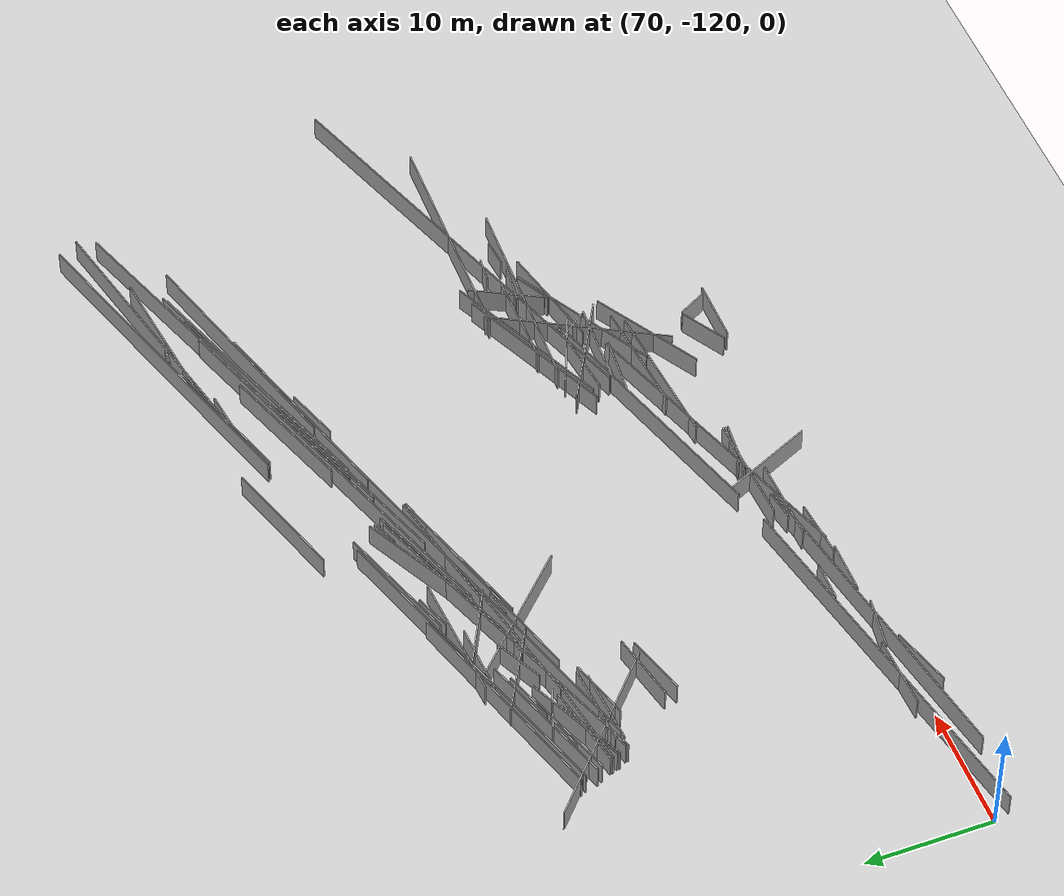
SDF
<sdf version="1.6">
 <world name="slam_world">
  <model name="ground_plane">
   <static>true</static>
   <link name="link">
    <collision name="collision">
     <geometry><plane><normal>0 0 1</normal><size>100 100</size></plane></geometry>
    </collision>
    <visual name="visual">
     <geometry><plane><normal>0 0 1</normal><size>100 100</size></plane></geometry>
     <material>
      <ambient>0.8 0.8 0.8 1</ambient>
      <diffuse>0.8 0.8 0.8 1</diffuse>
      <specular>0.8 0.8 0.8 1</specular>
     </material>
    </visual>
   </link>
  </model>
  <model name="wall_7">
   <static>true</static>
   <pose>121.4 -85.9 1.0 0 0 0.32978251018622395</pose>
   <link name="link">
    <collision name="collision">
     <geometry><box><size>31.497301471713413 0.1 2.0</size></box></geometry>
    </collision>
    <visual name="visual">
     <geometry><box><size>31.497301471713413 0.1 2.0</size></box></geometry>
     <material><ambient>0.5 0.5 0.5 1</ambient><diffuse>0.7 0.7 0.7 1</diffuse></material>
    </visual>
   </link>
  </model>
  <model name="wall_10">
   <static>true</static>
   <pose>95.2 -90.19999999999999 1.0 0 0 0.3097029445424562</pose>
   <link name="link">
    <collision name="collision">
     <geometry><box><size>26.248809496813376 0.1 2.0</size></box></geometry>
    </collision>
    <visual name="visual">
     <geometry><box><size>26.248809496813376 0.1 2.0</size></box></geometry>
     <material><ambient>0.5 0.5 0.5 1</ambient><diffuse>0.7 0.7 0.7 1</diffuse></material>
    </visual>
   </link>
  </model>
  <model name="wall_17">
   <static>true</static>
   <pose>116.0 -87.2 1.0 0 0 0.32762132843565006</pose>
   <link name="link">
    <collision name="collision"><geometry><box><size>32.31903463904825 0.1 2.0</size></box></geometry></collision>
    <visual name="visual">
     <geometry><box><size>32.31903463904825 0.1 2.0</size></box></geometry>
     <material><ambient>0.5 0.5 0.5 1</ambient><diffuse>0.7 0.7 0.7 1</diffuse></material>
    </visual>
   </link>
  </model>
  <model name="wall_20">
   <static>true</static>
   <pose>130.6 -78.8 1.0 0 0 0.3006763914001276</pose>
   <link name="link">
    <collision name="collision">
     <geometry><box><size>27.011849251763564 0.1 2.0</size></box></geometry>
    </collision>
    <visual name="visual">
     <geometry><box><size>27.011849251763564 0.1 2.0</size></box></geometry>
     <material><ambient>0.5 0.5 0.5 1</ambient><diffuse>0.7 0.7 0.7 1</diffuse></material>
    </visual>
   </link>
  </model>
  <model name="wall_44">
   <static>true</static>
   <pose>117.50000000000001 -110.6 1.0 0 0 -0.08314123188843928</pose>
   <link name="link">
    <collision name="collision"><geometry><box><size>4.816637831516929 0.1 2.0</size></box></geometry></collision>
    <visual name="visual">
     <geometry><box><size>4.816637831516929 0.1 2.0</size></box></geometry>
     <material><ambient>0.5 0.5 0.5 1</ambient><diffuse>0.7 0.7 0.7 1</diffuse></material>
    </visual>
   </link>
  </model>
  <model name="wall_50">
   <static>true</static>
   <pose>102.3 -92.8 1.0 0 0 0.29684467337640313</pose>
   <link name="link">
    <collision name="collision"><geometry><box><size>35.55502777386062 0.1 2.0</size></box></geometry></collision>
    <visual name="visual">
     <geometry><box><size>35.55502777386062 0.1 2.0</size></box></geometry>
     <material><ambient>0.5 0.5 0.5 1</ambient><diffuse>0.7 0.7 0.7 1</diffuse></material>
    </visual>
   </link>
  </model>
  <model name="wall_57">
   <static>true</static>
   <pose>85.0 -118.1 1.0 0 0 0.2078390443854342</pose>
   <link name="link">
    <collision name="collision">
     <geometry><box><size>30.046630426721737 0.1 2.0</size></box></geometry>
    </collision>
    <visual name="visual">
     <geometry><box><size>30.046630426721737 0.1 2.0</size></box></geometry>
     <material><ambient>0.5 0.5 0.5 1</ambient><diffuse>0.7 0.7 0.7 1</diffuse></material>
    </visual>
   </link>
  </model>
  <model name="wall_78">
   <static>true</static>
   <pose>91.10000000000001 -91.19999999999999 1.0 0 0 0.2935889874087501</pose>
   <link name="link">
    <collision name="collision"><geometry><box><size>17.96886195617295 0.1 2.0</size></box></geometry></collision>
    <visual name="visual">
     <geometry><box><size>17.96886195617295 0.1 2.0</size></box></geometry>
     <material><ambient>0.5 0.5 0.5 1</ambient><diffuse>0.7 0.7 0.7 1</diffuse></material>
    </visual>
   </link>
  </model>
  <model name="wall_98">
   <static>true</static>
   <pose>126.9 -106.5 1.0 0 0 -0.03569911267932364</pose>
   <link name="link">
    <collision name="collision">
     <geometry><box><size>16.810710871346277 0.1 2.0</size></box></geometry>
    </collision>
    <visual name="visual">
     <geometry><box><size>16.810710871346277 0.1 2.0</size></box></geometry>
     <material><ambient>0.5 0.5 0.5 1</ambient><diffuse>0.7 0.7 0.7 1</diffuse></material>
    </visual>
   </link>
  </model>
  <model name="wall_100">
   <static>true</static>
   <pose>87.89999999999999 -97.8 1.0 0 0 0.06656816377582475</pose>
   <link name="link">
    <collision name="collision"><geometry><box><size>6.013318551349164 0.1 2.0</size></box></geometry></collision>
    <visual name="visual">
     <geometry><box><size>6.013318551349164 0.1 2.0</size></box></geometry>
     <material><ambient>0.5 0.5 0.5 1</ambient><diffuse>0.7 0.7 0.7 1</diffuse></material>
    </visual>
   </link>
  </model>
  <model name="wall_115">
   <static>true</static>
   <pose>87.60000000000001 -95.3 1.0 0 0 0.4110645473898645</pose>
   <link name="link">
    <collision name="collision"><geometry><box><size>8.508818954473071 0.1 2.0</size></box></geometry></collision>
    <visual name="visual">
     <geometry><box><size>8.508818954473071 0.1 2.0</size></box></geometry>
     <material><ambient>0.5 0.5 0.5 1</ambient><diffuse>0.7 0.7 0.7 1</diffuse></material>
    </visual>
   </link>
  </model>
  <model name="wall_119">
   <static>true</static>
   <pose>104.9 -117.5 1.0 0 0 -1.1420182993488783</pose>
   <link name="link">
    <collision name="collision"><geometry><box><size>7.69675256195755 0.1 2.0</size></box></geometry></collision>
    <visual name="visual">
     <geometry><box><size>7.69675256195755 0.1 2.0</size></box></geometry>
     <material><ambient>0.5 0.5 0.5 1</ambient><diffuse>0.7 0.7 0.7 1</diffuse></material>
    </visual>
   </link>
  </model>
  <model name="wall_120">
   <static>true</static>
   <pose>120.70000000000002 -85.2 1.0 0 0 0.3332443011116721</pose>
   <link name="link">
    <collision name="collision">
     <geometry><box><size>11.005453193758088 0.1 2.0</size></box></geometry>
    </collision>
    <visual name="visual">
     <geometry><box><size>11.005453193758088 0.1 2.0</size></box></geometry>
     <material><ambient>0.5 0.5 0.5 1</ambient><diffuse>0.7 0.7 0.7 1</diffuse></material>
    </visual>
   </link>
  </model>
  <model name="wall_127">
   <static>true</static>
   <pose>88.7 -119.1 1.0 0 0 0.18998828791871572</pose>
   <link name="link">
    <collision name="collision">
     <geometry><box><size>26.476404589747453 0.1 2.0</size></box></geometry>
    </collision>
    <visual name="visual">
     <geometry><box><size>26.476404589747453 0.1 2.0</size></box></geometry>
     <material><ambient>0.5 0.5 0.5 1</ambient><diffuse>0.7 0.7 0.7 1</diffuse></material>
    </visual>
   </link>
  </model>
  <model name="wall_148">
   <static>true</static>
   <pose>118.80000000000001 -118.2 1.0 0 0 0.5317240672588048</pose>
   <link name="link">
    <collision name="collision"><geometry><box><size>3.944616584663209 0.1 2.0</size></box></geometry></collision>
    <visual name="visual">
     <geometry><box><size>3.944616584663209 0.1 2.0</size></box></geometry>
     <material><ambient>0.5 0.5 0.5 1</ambient><diffuse>0.7 0.7 0.7 1</diffuse></material>
    </visual>
   </link>
  </model>
  <model name="wall_157">
   <static>true</static>
   <pose>108.20000000000002 -114.6 1.0 0 0 0.3294230381121475</pose>
   <link name="link">
    <collision name="collision">
     <geometry><box><size>24.729739181802955 0.1 2.0</size></box></geometry>
    </collision>
    <visual name="visual">
     <geometry><box><size>24.729739181802955 0.1 2.0</size></box></geometry>
     <material><ambient>0.5 0.5 0.5 1</ambient><diffuse>0.7 0.7 0.7 1</diffuse></material>
    </visual>
   </link>
  </model>
  <model name="wall_169">
   <static>true</static>
   <pose>121.9 -86.8 1.0 0 0 0.2847304385227109</pose>
   <link name="link">
    <collision name="collision"><geometry><box><size>17.08800749063508 0.1 2.0</size></box></geometry></collision>
    <visual name="visual">
     <geometry><box><size>17.08800749063508 0.1 2.0</size></box></geometry>
     <material><ambient>0.5 0.5 0.5 1</ambient><diffuse>0.7 0.7 0.7 1</diffuse></material>
    </visual>
   </link>
  </model>
  <model name="wall_180">
   <static>true</static>
   <pose>94.00000000000001 -93.5 1.0 0 0 0.4423742229767462</pose>
   <link name="link">
    <collision name="collision"><geometry><box><size>4.204759208325743 0.1 2.0</size></box></geometry></collision>
    <visual name="visual">
     <geometry><box><size>4.204759208325743 0.1 2.0</size></box></geometry>
     <material><ambient>0.5 0.5 0.5 1</ambient><diffuse>0.7 0.7 0.7 1</diffuse></material>
    </visual>
   </link>
  </model>
  <model name="wall_183">
   <static>true</static>
   <pose>112.5 -82.1 1.0 0 0 0.3028848683749716</pose>
   <link name="link">
    <collision name="collision"><geometry><box><size>10.05783276854412 0.1 2.0</size></box></geometry></collision>
    <visual name="visual">
     <geometry><box><size>10.05783276854412 0.1 2.0</size></box></geometry>
     <material><ambient>0.5 0.5 0.5 1</ambient><diffuse>0.7 0.7 0.7 1</diffuse></material>
    </visual>
   </link>
  </model>
  <model name="wall_195">
   <static>true</static>
   <pose>96.7 -93.4 1.0 0 0 0.3500448882451462</pose>
   <link name="link">
    <collision name="collision">
     <geometry><box><size>26.826852219371535 0.1 2.0</size></box></geometry>
    </collision>
    <visual name="visual">
     <geometry><box><size>26.826852219371535 0.1 2.0</size></box></geometry>
     <material><ambient>0.5 0.5 0.5 1</ambient><diffuse>0.7 0.7 0.7 1</diffuse></material>
    </visual>
   </link>
  </model>
  <model name="wall_198">
   <static>true</static>
   <pose>133.3 -103.8 1.0 0 0 0.332426305384097</pose>
   <link name="link">
    <collision name="collision"><geometry><box><size>35.54602650086224 0.1 2.0</size></box></geometry></collision>
    <visual name="visual">
     <geometry><box><size>35.54602650086224 0.1 2.0</size></box></geometry>
     <material><ambient>0.5 0.5 0.5 1</ambient><diffuse>0.7 0.7 0.7 1</diffuse></material>
    </visual>
   </link>
  </model>
  <model name="wall_201">
   <static>true</static>
   <pose>88.39999999999999 -93.39999999999999 1.0 0 0 0.316286127912154</pose>
   <link name="link">
    <collision name="collision">
     <geometry><box><size>11.574109036984227 0.1 2.0</size></box></geometry>
    </collision>
    <visual name="visual">
     <geometry><box><size>11.574109036984227 0.1 2.0</size></box></geometry>
     <material><ambient>0.5 0.5 0.5 1</ambient><diffuse>0.7 0.7 0.7 1</diffuse></material>
    </visual>
   </link>
  </model>
  <model name="wall_208">
   <static>true</static>
   <pose>101.7 -93.6 1.0 0 0 0.28728145339713324</pose>
   <link name="link">
    <collision name="collision"><geometry><box><size>18.35211159512716 0.1 2.0</size></box></geometry></collision>
    <visual name="visual">
     <geometry><box><size>18.35211159512716 0.1 2.0</size></box></geometry>
     <material><ambient>0.5 0.5 0.5 1</ambient><diffuse>0.7 0.7 0.7 1</diffuse></material>
    </visual>
   </link>
  </model>
  <model name="wall_215">
   <static>true</static>
   <pose>86.80000000000001 -94.39999999999999 1.0 0 0 0.31362065221669877</pose>
   <link name="link">
    <collision name="collision"><geometry><box><size>7.779460135510697 0.1 2.0</size></box></geometry></collision>
    <visual name="visual">
     <geometry><box><size>7.779460135510697 0.1 2.0</size></box></geometry>
     <material><ambient>0.5 0.5 0.5 1</ambient><diffuse>0.7 0.7 0.7 1</diffuse></material>
    </visual>
   </link>
  </model>
  <model name="wall_229">
   <static>true</static>
   <pose>120.00000000000001 -119.6 1.0 0 0 0.0</pose>
   <link name="link">
    <collision name="collision"><geometry><box><size>5.0 0.1 2.0</size></box></geometry></collision>
    <visual name="visual">
     <geometry><box><size>5.0 0.1 2.0</size></box></geometry>
     <material><ambient>0.5 0.5 0.5 1</ambient><diffuse>0.7 0.7 0.7 1</diffuse></material>
    </visual>
   </link>
  </model>
  <model name="wall_267">
   <static>true</static>
   <pose>123.7 -81.39999999999999 1.0 0 0 0.12435499454676362</pose>
   <link name="link">
    <collision name="collision"><geometry><box><size>3.224903099319409 0.1 2.0</size></box></geometry></collision>
    <visual name="visual">
     <geometry><box><size>3.224903099319409 0.1 2.0</size></box></geometry>
     <material><ambient>0.5 0.5 0.5 1</ambient><diffuse>0.7 0.7 0.7 1</diffuse></material>
    </visual>
   </link>
  </model>
  <model name="wall_274">
   <static>true</static>
   <pose>125.80000000000001 -108.4 1.0 0 0 0.2284966392918621</pose>
   <link name="link">
    <collision name="collision"><geometry><box><size>8.829496021857654 0.1 2.0</size></box></geometry></collision>
    <visual name="visual">
     <geometry><box><size>8.829496021857654 0.1 2.0</size></box></geometry>
     <material><ambient>0.5 0.5 0.5 1</ambient><diffuse>0.7 0.7 0.7 1</diffuse></material>
    </visual>
   </link>
  </model>
  <model name="wall_276">
   <static>true</static>
   <pose>83.9 -120.5 1.0 0 0 0.28379410920832987</pose>
   <link name="link">
    <collision name="collision"><geometry><box><size>4.999999999999985 0.1 2.0</size></box></geometry></collision>
    <visual name="visual">
     <geometry><box><size>4.999999999999985 0.1 2.0</size></box></geometry>
     <material><ambient>0.5 0.5 0.5 1</ambient><diffuse>0.7 0.7 0.7 1</diffuse></material>
    </visual>
   </link>
  </model>
  <model name="wall_278">
   <static>true</static>
   <pose>112.60000000000001 -111.1 1.0 0 0 0.2978030374744349</pose>
   <link name="link">
    <collision name="collision">
     <geometry><box><size>21.130073355291497 0.1 2.0</size></box></geometry>
    </collision>
    <visual name="visual">
     <geometry><box><size>21.130073355291497 0.1 2.0</size></box></geometry>
     <material><ambient>0.5 0.5 0.5 1</ambient><diffuse>0.7 0.7 0.7 1</diffuse></material>
    </visual>
   </link>
  </model>
  <model name="wall_283">
   <static>true</static>
   <pose>134.3 -103.4 1.0 0 0 -0.021735706841792213</pose>
   <link name="link">
    <collision name="collision">
     <geometry><box><size>18.404347312523736 0.1 2.0</size></box></geometry>
    </collision>
    <visual name="visual">
     <geometry><box><size>18.404347312523736 0.1 2.0</size></box></geometry>
     <material><ambient>0.5 0.5 0.5 1</ambient><diffuse>0.7 0.7 0.7 1</diffuse></material>
    </visual>
   </link>
  </model>
  <model name="wall_303">
   <static>true</static>
   <pose>103.70000000000002 -87.8 1.0 0 0 0.32175055439664396</pose>
   <link name="link">
    <collision name="collision">
     <geometry><box><size>10.119288512538814 0.1 2.0</size></box></geometry>
    </collision>
    <visual name="visual">
     <geometry><box><size>10.119288512538814 0.1 2.0</size></box></geometry>
     <material><ambient>0.5 0.5 0.5 1</ambient><diffuse>0.7 0.7 0.7 1</diffuse></material>
    </visual>
   </link>
  </model>
  <model name="wall_324">
   <static>true</static>
   <pose>120.00000000000001 -114.0 1.0 0 0 0.529589598782078</pose>
   <link name="link">
    <collision name="collision"><geometry><box><size>9.501578816175758 0.1 2.0</size></box></geometry></collision>
    <visual name="visual">
     <geometry><box><size>9.501578816175758 0.1 2.0</size></box></geometry>
     <material><ambient>0.5 0.5 0.5 1</ambient><diffuse>0.7 0.7 0.7 1</diffuse></material>
    </visual>
   </link>
  </model>
  <model name="wall_325">
   <static>true</static>
   <pose>124.4 -105.4 1.0 0 0 0.0</pose>
   <link name="link">
    <collision name="collision"><geometry><box><size>7.799999999999997 0.1 2.0</size></box></geometry></collision>
    <visual name="visual">
     <geometry><box><size>7.799999999999997 0.1 2.0</size></box></geometry>
     <material><ambient>0.5 0.5 0.5 1</ambient><diffuse>0.7 0.7 0.7 1</diffuse></material>
    </visual>
   </link>
  </model>
  <model name="wall_340">
   <static>true</static>
   <pose>104.4 -92.9 1.0 0 0 0.31154682690268815</pose>
   <link name="link">
    <collision name="collision">
     <geometry><box><size>12.396773773849372 0.1 2.0</size></box></geometry>
    </collision>
    <visual name="visual">
     <geometry><box><size>12.396773773849372 0.1 2.0</size></box></geometry>
     <material><ambient>0.5 0.5 0.5 1</ambient><diffuse>0.7 0.7 0.7 1</diffuse></material>
    </visual>
   </link>
  </model>
  <model name="wall_357">
   <static>true</static>
   <pose>86.9 -94.19999999999999 1.0 0 0 0.278299659005112</pose>
   <link name="link">
    <collision name="collision">
     <geometry><box><size>2.9120439557121904 0.1 2.0</size></box></geometry>
    </collision>
    <visual name="visual">
     <geometry><box><size>2.9120439557121904 0.1 2.0</size></box></geometry>
     <material><ambient>0.5 0.5 0.5 1</ambient><diffuse>0.7 0.7 0.7 1</diffuse></material>
    </visual>
   </link>
  </model>
  <model name="wall_360">
   <static>true</static>
   <pose>104.50000000000001 -115.8 1.0 0 0 0.0454232794215776</pose>
   <link name="link">
    <collision name="collision"><geometry><box><size>8.809086218218107 0.1 2.0</size></box></geometry></collision>
    <visual name="visual">
     <geometry><box><size>8.809086218218107 0.1 2.0</size></box></geometry>
     <material><ambient>0.5 0.5 0.5 1</ambient><diffuse>0.7 0.7 0.7 1</diffuse></material>
    </visual>
   </link>
  </model>
  <model name="wall_386">
   <static>true</static>
   <pose>86.4 -96.0 1.0 0 0 0.4182243295792274</pose>
   <link name="link">
    <collision name="collision"><geometry><box><size>5.909314681077664 0.1 2.0</size></box></geometry></collision>
    <visual name="visual">
     <geometry><box><size>5.909314681077664 0.1 2.0</size></box></geometry>
     <material><ambient>0.5 0.5 0.5 1</ambient><diffuse>0.7 0.7 0.7 1</diffuse></material>
    </visual>
   </link>
  </model>
  <model name="wall_389">
   <static>true</static>
   <pose>121.2 -87.5 1.0 0 0 0.3217505543966412</pose>
   <link name="link">
    <collision name="collision"><geometry><box><size>4.427188724235718 0.1 2.0</size></box></geometry></collision>
    <visual name="visual">
     <geometry><box><size>4.427188724235718 0.1 2.0</size></box></geometry>
     <material><ambient>0.5 0.5 0.5 1</ambient><diffuse>0.7 0.7 0.7 1</diffuse></material>
    </visual>
   </link>
  </model>
  <model name="wall_392">
   <static>true</static>
   <pose>88.30000000000001 -97.2 1.0 0 0 0.062418809995958176</pose>
   <link name="link">
    <collision name="collision"><geometry><box><size>6.412487816752565 0.1 2.0</size></box></geometry></collision>
    <visual name="visual">
     <geometry><box><size>6.412487816752565 0.1 2.0</size></box></geometry>
     <material><ambient>0.5 0.5 0.5 1</ambient><diffuse>0.7 0.7 0.7 1</diffuse></material>
    </visual>
   </link>
  </model>
  <model name="wall_397">
   <static>true</static>
   <pose>100.9 -117.1 1.0 0 0 0.029403288204005607</pose>
   <link name="link">
    <collision name="collision"><geometry><box><size>6.802940540677962 0.1 2.0</size></box></geometry></collision>
    <visual name="visual">
     <geometry><box><size>6.802940540677962 0.1 2.0</size></box></geometry>
     <material><ambient>0.5 0.5 0.5 1</ambient><diffuse>0.7 0.7 0.7 1</diffuse></material>
    </visual>
   </link>
  </model>
  <model name="wall_427">
   <static>true</static>
   <pose>122.2 -109.3 1.0 0 0 1.0636978224025595</pose>
   <link name="link">
    <collision name="collision">
     <geometry><box><size>14.413882197381795 0.1 2.0</size></box></geometry>
    </collision>
    <visual name="visual">
     <geometry><box><size>14.413882197381795 0.1 2.0</size></box></geometry>
     <material><ambient>0.5 0.5 0.5 1</ambient><diffuse>0.7 0.7 0.7 1</diffuse></material>
    </visual>
   </link>
  </model>
  <model name="wall_440">
   <static>true</static>
   <pose>129.20000000000002 -84.5 1.0 0 0 0.28255495246958734</pose>
   <link name="link">
    <collision name="collision">
     <geometry><box><size>19.368014869882746 0.1 2.0</size></box></geometry>
    </collision>
    <visual name="visual">
     <geometry><box><size>19.368014869882746 0.1 2.0</size></box></geometry>
     <material><ambient>0.5 0.5 0.5 1</ambient><diffuse>0.7 0.7 0.7 1</diffuse></material>
    </visual>
   </link>
  </model>
  <model name="wall_441">
   <static>true</static>
   <pose>133.4 -78.9 1.0 0 0 0.22545836628305999</pose>
   <link name="link">
    <collision name="collision">
     <geometry><box><size>22.366045694310827 0.1 2.0</size></box></geometry>
    </collision>
    <visual name="visual">
     <geometry><box><size>22.366045694310827 0.1 2.0</size></box></geometry>
     <material><ambient>0.5 0.5 0.5 1</ambient><diffuse>0.7 0.7 0.7 1</diffuse></material>
    </visual>
   </link>
  </model>
  <model name="wall_457">
   <static>true</static>
   <pose>95.10000000000001 -90.9 1.0 0 0 0.03569911267932433</pose>
   <link name="link">
    <collision name="collision"><geometry><box><size>5.603570290448783 0.1 2.0</size></box></geometry></collision>
    <visual name="visual">
     <geometry><box><size>5.603570290448783 0.1 2.0</size></box></geometry>
     <material><ambient>0.5 0.5 0.5 1</ambient><diffuse>0.7 0.7 0.7 1</diffuse></material>
    </visual>
   </link>
  </model>
  <model name="wall_459">
   <static>true</static>
   <pose>117.40000000000002 -87.1 1.0 0 0 0.3326196915739133</pose>
   <link name="link">
    <collision name="collision">
     <geometry><box><size>11.637869220780928 0.1 2.0</size></box></geometry>
    </collision>
    <visual name="visual">
     <geometry><box><size>11.637869220780928 0.1 2.0</size></box></geometry>
     <material><ambient>0.5 0.5 0.5 1</ambient><diffuse>0.7 0.7 0.7 1</diffuse></material>
    </visual>
   </link>
  </model>
  <model name="wall_478">
   <static>true</static>
   <pose>123.1 -109.9 1.0 0 0 0.5055810548742063</pose>
   <link name="link">
    <collision name="collision">
     <geometry><box><size>12.801562404644187 0.1 2.0</size></box></geometry>
    </collision>
    <visual name="visual">
     <geometry><box><size>12.801562404644187 0.1 2.0</size></box></geometry>
     <material><ambient>0.5 0.5 0.5 1</ambient><diffuse>0.7 0.7 0.7 1</diffuse></material>
    </visual>
   </link>
  </model>
  <model name="wall_490">
   <static>true</static>
   <pose>99.4 -94.0 1.0 0 0 0.17985349979247314</pose>
   <link name="link">
    <collision name="collision"><geometry><box><size>2.236067977499805 0.1 2.0</size></box></geometry></collision>
    <visual name="visual">
     <geometry><box><size>2.236067977499805 0.1 2.0</size></box></geometry>
     <material><ambient>0.5 0.5 0.5 1</ambient><diffuse>0.7 0.7 0.7 1</diffuse></material>
    </visual>
   </link>
  </model>
  <model name="wall_494">
   <static>true</static>
   <pose>120.60000000000001 -107.7 1.0 0 0 -0.3970794452249822</pose>
   <link name="link">
    <collision name="collision"><geometry><box><size>6.723094525588632 0.1 2.0</size></box></geometry></collision>
    <visual name="visual">
     <geometry><box><size>6.723094525588632 0.1 2.0</size></box></geometry>
     <material><ambient>0.5 0.5 0.5 1</ambient><diffuse>0.7 0.7 0.7 1</diffuse></material>
    </visual>
   </link>
  </model>
  <model name="wall_550">
   <static>true</static>
   <pose>125.50000000000003 -84.6 1.0 0 0 0.33324430111167186</pose>
   <link name="link">
    <collision name="collision">
     <geometry><box><size>22.010906387516187 0.1 2.0</size></box></geometry>
    </collision>
    <visual name="visual">
     <geometry><box><size>22.010906387516187 0.1 2.0</size></box></geometry>
     <material><ambient>0.5 0.5 0.5 1</ambient><diffuse>0.7 0.7 0.7 1</diffuse></material>
    </visual>
   </link>
  </model>
  <model name="wall_555">
   <static>true</static>
   <pose>119.4 -108.19999999999999 1.0 0 0 0.1206236685801024</pose>
   <link name="link">
    <collision name="collision"><geometry><box><size>6.648308055437858 0.1 2.0</size></box></geometry></collision>
    <visual name="visual">
     <geometry><box><size>6.648308055437858 0.1 2.0</size></box></geometry>
     <material><ambient>0.5 0.5 0.5 1</ambient><diffuse>0.7 0.7 0.7 1</diffuse></material>
    </visual>
   </link>
  </model>
  <model name="wall_586">
   <static>true</static>
   <pose>128.4 -83.19999999999999 1.0 0 0 0.30400093934014477</pose>
   <link name="link">
    <collision name="collision">
     <geometry><box><size>10.690182411914218 0.1 2.0</size></box></geometry>
    </collision>
    <visual name="visual">
     <geometry><box><size>10.690182411914218 0.1 2.0</size></box></geometry>
     <material><ambient>0.5 0.5 0.5 1</ambient><diffuse>0.7 0.7 0.7 1</diffuse></material>
    </visual>
   </link>
  </model>
  <model name="wall_608">
   <static>true</static>
   <pose>121.2 -105.3 1.0 0 0 0.41670226073939926</pose>
   <link name="link">
    <collision name="collision">
     <geometry><box><size>13.341664064126325 0.1 2.0</size></box></geometry>
    </collision>
    <visual name="visual">
     <geometry><box><size>13.341664064126325 0.1 2.0</size></box></geometry>
     <material><ambient>0.5 0.5 0.5 1</ambient><diffuse>0.7 0.7 0.7 1</diffuse></material>
    </visual>
   </link>
  </model>
  <model name="wall_609">
   <static>true</static>
   <pose>115.60000000000001 -113.3 1.0 0 0 0.08454375551299806</pose>
   <link name="link">
    <collision name="collision"><geometry><box><size>11.84229707446998 0.1 2.0</size></box></geometry></collision>
    <visual name="visual">
     <geometry><box><size>11.84229707446998 0.1 2.0</size></box></geometry>
     <material><ambient>0.5 0.5 0.5 1</ambient><diffuse>0.7 0.7 0.7 1</diffuse></material>
    </visual>
   </link>
  </model>
  <model name="wall_621">
   <static>true</static>
   <pose>93.4 -118.8 1.0 0 0 0.0</pose>
   <link name="link">
    <collision name="collision"><geometry><box><size>4.200000000000017 0.1 2.0</size></box></geometry></collision>
    <visual name="visual">
     <geometry><box><size>4.200000000000017 0.1 2.0</size></box></geometry>
     <material><ambient>0.5 0.5 0.5 1</ambient><diffuse>0.7 0.7 0.7 1</diffuse></material>
    </visual>
   </link>
  </model>
  <model name="wall_624">
   <static>true</static>
   <pose>131.6 -106.1 1.0 0 0 0.09065988720074686</pose>
   <link name="link">
    <collision name="collision"><geometry><box><size>2.209072203437441 0.1 2.0</size></box></geometry></collision>
    <visual name="visual">
     <geometry><box><size>2.209072203437441 0.1 2.0</size></box></geometry>
     <material><ambient>0.5 0.5 0.5 1</ambient><diffuse>0.7 0.7 0.7 1</diffuse></material>
    </visual>
   </link>
  </model>
  <model name="wall_626">
   <static>true</static>
   <pose>100.30000000000001 -89.3 1.0 0 0 0.34302394042070533</pose>
   <link name="link">
    <collision name="collision">
     <geometry><box><size>2.9732137494636848 0.1 2.0</size></box></geometry>
    </collision>
    <visual name="visual">
     <geometry><box><size>2.9732137494636848 0.1 2.0</size></box></geometry>
     <material><ambient>0.5 0.5 0.5 1</ambient><diffuse>0.7 0.7 0.7 1</diffuse></material>
    </visual>
   </link>
  </model>
  <model name="wall_639">
   <static>true</static>
   <pose>87.8 -118.9 1.0 0 0 -0.1418970546041663</pose>
   <link name="link">
    <collision name="collision"><geometry><box><size>4.242640687119275 0.1 2.0</size></box></geometry></collision>
    <visual name="visual">
     <geometry><box><size>4.242640687119275 0.1 2.0</size></box></geometry>
     <material><ambient>0.5 0.5 0.5 1</ambient><diffuse>0.7 0.7 0.7 1</diffuse></material>
    </visual>
   </link>
  </model>
  <model name="wall_703">
   <static>true</static>
   <pose>93.30000000000001 -93.2 1.0 0 0 -0.5123894603107366</pose>
   <link name="link">
    <collision name="collision"><geometry><box><size>7.343023900274329 0.1 2.0</size></box></geometry></collision>
    <visual name="visual">
     <geometry><box><size>7.343023900274329 0.1 2.0</size></box></geometry>
     <material><ambient>0.5 0.5 0.5 1</ambient><diffuse>0.7 0.7 0.7 1</diffuse></material>
    </visual>
   </link>
  </model>
  <model name="wall_714">
   <static>true</static>
   <pose>92.7 -117.0 1.0 0 0 0.0</pose>
   <link name="link">
    <collision name="collision">
     <geometry><box><size>3.1999999999999886 0.1 2.0</size></box></geometry>
    </collision>
    <visual name="visual">
     <geometry><box><size>3.1999999999999886 0.1 2.0</size></box></geometry>
     <material><ambient>0.5 0.5 0.5 1</ambient><diffuse>0.7 0.7 0.7 1</diffuse></material>
    </visual>
   </link>
  </model>
  <model name="wall_728">
   <static>true</static>
   <pose>127.1 -107.5 1.0 0 0 0.46364760900080815</pose>
   <link name="link">
    <collision name="collision">
     <geometry><box><size>3.1304951684997055 0.1 2.0</size></box></geometry>
    </collision>
    <visual name="visual">
     <geometry><box><size>3.1304951684997055 0.1 2.0</size></box></geometry>
     <material><ambient>0.5 0.5 0.5 1</ambient><diffuse>0.7 0.7 0.7 1</diffuse></material>
    </visual>
   </link>
  </model>
  <model name="wall_731">
   <static>true</static>
   <pose>132.5 -79.5 1.0 0 0 0.12010873556691207</pose>
   <link name="link">
    <collision name="collision">
     <geometry><box><size>11.684177335182833 0.1 2.0</size></box></geometry>
    </collision>
    <visual name="visual">
     <geometry><box><size>11.684177335182833 0.1 2.0</size></box></geometry>
     <material><ambient>0.5 0.5 0.5 1</ambient><diffuse>0.7 0.7 0.7 1</diffuse></material>
    </visual>
   </link>
  </model>
  <model name="wall_732">
   <static>true</static>
   <pose>100.5 -116.6 1.0 0 0 0.165148677414623</pose>
   <link name="link">
    <collision name="collision"><geometry><box><size>2.433105012119292 0.1 2.0</size></box></geometry></collision>
    <visual name="visual">
     <geometry><box><size>2.433105012119292 0.1 2.0</size></box></geometry>
     <material><ambient>0.5 0.5 0.5 1</ambient><diffuse>0.7 0.7 0.7 1</diffuse></material>
    </visual>
   </link>
  </model>
  <model name="wall_740">
   <static>true</static>
   <pose>95.60000000000001 -93.8 1.0 0 0 0.1798534997924817</pose>
   <link name="link">
    <collision name="collision">
     <geometry><box><size>2.2360679774997796 0.1 2.0</size></box></geometry>
    </collision>
    <visual name="visual">
     <geometry><box><size>2.2360679774997796 0.1 2.0</size></box></geometry>
     <material><ambient>0.5 0.5 0.5 1</ambient><diffuse>0.7 0.7 0.7 1</diffuse></material>
    </visual>
   </link>
  </model>
  <model name="wall_756">
   <static>true</static>
   <pose>83.2 -118.5 1.0 0 0 0.03446910099950599</pose>
   <link name="link">
    <collision name="collision"><geometry><box><size>5.803447251418774 0.1 2.0</size></box></geometry></collision>
    <visual name="visual">
     <geometry><box><size>5.803447251418774 0.1 2.0</size></box></geometry>
     <material><ambient>0.5 0.5 0.5 1</ambient><diffuse>0.7 0.7 0.7 1</diffuse></material>
    </visual>
   </link>
  </model>
  <model name="wall_779">
   <static>true</static>
   <pose>117.7 -112.4 1.0 0 0 0.0867383386759849</pose>
   <link name="link">
    <collision name="collision"><geometry><box><size>9.234717104492145 0.1 2.0</size></box></geometry></collision>
    <visual name="visual">
     <geometry><box><size>9.234717104492145 0.1 2.0</size></box></geometry>
     <material><ambient>0.5 0.5 0.5 1</ambient><diffuse>0.7 0.7 0.7 1</diffuse></material>
    </visual>
   </link>
  </model>
  <model name="wall_803">
   <static>true</static>
   <pose>90.10000000000001 -102.5 1.0 0 0 0.2837941092083283</pose>
   <link name="link">
    <collision name="collision"><geometry><box><size>5.000000000000012 0.1 2.0</size></box></geometry></collision>
    <visual name="visual">
     <geometry><box><size>5.000000000000012 0.1 2.0</size></box></geometry>
     <material><ambient>0.5 0.5 0.5 1</ambient><diffuse>0.7 0.7 0.7 1</diffuse></material>
    </visual>
   </link>
  </model>
  <model name="wall_821">
   <static>true</static>
   <pose>89.10000000000001 -94.19999999999999 1.0 0 0 -0.3587706702705742</pose>
   <link name="link">
    <collision name="collision">
     <geometry><box><size>3.4176014981270026 0.1 2.0</size></box></geometry>
    </collision>
    <visual name="visual">
     <geometry><box><size>3.4176014981270026 0.1 2.0</size></box></geometry>
     <material><ambient>0.5 0.5 0.5 1</ambient><diffuse>0.7 0.7 0.7 1</diffuse></material>
    </visual>
   </link>
  </model>
  <model name="wall_841">
   <static>true</static>
   <pose>120.10000000000001 -110.0 1.0 0 0 -0.05875582271572343</pose>
   <link name="link">
    <collision name="collision">
     <geometry><box><size>6.8117545463705715 0.1 2.0</size></box></geometry>
    </collision>
    <visual name="visual">
     <geometry><box><size>6.8117545463705715 0.1 2.0</size></box></geometry>
     <material><ambient>0.5 0.5 0.5 1</ambient><diffuse>0.7 0.7 0.7 1</diffuse></material>
    </visual>
   </link>
  </model>
  <model name="wall_856">
   <static>true</static>
   <pose>106.80000000000001 -115.8 1.0 0 0 -0.09495170634275728</pose>
   <link name="link">
    <collision name="collision"><geometry><box><size>4.219004621945815 0.1 2.0</size></box></geometry></collision>
    <visual name="visual">
     <geometry><box><size>4.219004621945815 0.1 2.0</size></box></geometry>
     <material><ambient>0.5 0.5 0.5 1</ambient><diffuse>0.7 0.7 0.7 1</diffuse></material>
    </visual>
   </link>
  </model>
  <model name="wall_877">
   <static>true</static>
   <pose>104.9 -90.1 1.0 0 0 0.4636476090008061</pose>
   <link name="link">
    <collision name="collision">
     <geometry><box><size>10.285912696499052 0.1 2.0</size></box></geometry>
    </collision>
    <visual name="visual">
     <geometry><box><size>10.285912696499052 0.1 2.0</size></box></geometry>
     <material><ambient>0.5 0.5 0.5 1</ambient><diffuse>0.7 0.7 0.7 1</diffuse></material>
    </visual>
   </link>
  </model>
  <model name="wall_879">
   <static>true</static>
   <pose>89.5 -97.89999999999999 1.0 0 0 0.28379410920832987</pose>
   <link name="link">
    <collision name="collision"><geometry><box><size>4.999999999999985 0.1 2.0</size></box></geometry></collision>
    <visual name="visual">
     <geometry><box><size>4.999999999999985 0.1 2.0</size></box></geometry>
     <material><ambient>0.5 0.5 0.5 1</ambient><diffuse>0.7 0.7 0.7 1</diffuse></material>
    </visual>
   </link>
  </model>
  <model name="wall_886">
   <static>true</static>
   <pose>97.9 -95.0 1.0 0 0 -0.7853981633974483</pose>
   <link name="link">
    <collision name="collision">
     <geometry><box><size>11.879393923934007 0.1 2.0</size></box></geometry>
    </collision>
    <visual name="visual">
     <geometry><box><size>11.879393923934007 0.1 2.0</size></box></geometry>
     <material><ambient>0.5 0.5 0.5 1</ambient><diffuse>0.7 0.7 0.7 1</diffuse></material>
    </visual>
   </link>
  </model>
  <model name="wall_905">
   <static>true</static>
   <pose>97.60000000000001 -90.1 1.0 0 0 0.05875582271572359</pose>
   <link name="link">
    <collision name="collision"><geometry><box><size>10.21763181955583 0.1 2.0</size></box></geometry></collision>
    <visual name="visual">
     <geometry><box><size>10.21763181955583 0.1 2.0</size></box></geometry>
     <material><ambient>0.5 0.5 0.5 1</ambient><diffuse>0.7 0.7 0.7 1</diffuse></material>
    </visual>
   </link>
  </model>
  <model name="wall_908">
   <static>true</static>
   <pose>87.10000000000001 -96.0 1.0 0 0 0.16514867741462555</pose>
   <link name="link">
    <collision name="collision"><geometry><box><size>7.29931503635785 0.1 2.0</size></box></geometry></collision>
    <visual name="visual">
     <geometry><box><size>7.29931503635785 0.1 2.0</size></box></geometry>
     <material><ambient>0.5 0.5 0.5 1</ambient><diffuse>0.7 0.7 0.7 1</diffuse></material>
    </visual>
   </link>
  </model>
  <model name="wall_911">
   <static>true</static>
   <pose>86.80000000000001 -95.7 1.0 0 0 0.20902294280626563</pose>
   <link name="link">
    <collision name="collision"><geometry><box><size>6.746851117373196 0.1 2.0</size></box></geometry></collision>
    <visual name="visual">
     <geometry><box><size>6.746851117373196 0.1 2.0</size></box></geometry>
     <material><ambient>0.5 0.5 0.5 1</ambient><diffuse>0.7 0.7 0.7 1</diffuse></material>
    </visual>
   </link>
  </model>
  <model name="wall_924">
   <static>true</static>
   <pose>129.0 -82.9 1.0 0 0 0.3339450718448942</pose>
   <link name="link">
    <collision name="collision">
     <geometry><box><size>31.119125951735846 0.1 2.0</size></box></geometry>
    </collision>
    <visual name="visual">
     <geometry><box><size>31.119125951735846 0.1 2.0</size></box></geometry>
     <material><ambient>0.5 0.5 0.5 1</ambient><diffuse>0.7 0.7 0.7 1</diffuse></material>
    </visual>
   </link>
  </model>
  <model name="wall_926">
   <static>true</static>
   <pose>85.9 -96.69999999999999 1.0 0 0 -0.7387031593541172</pose>
   <link name="link">
    <collision name="collision">
     <geometry><box><size>15.148597294799293 0.1 2.0</size></box></geometry>
    </collision>
    <visual name="visual">
     <geometry><box><size>15.148597294799293 0.1 2.0</size></box></geometry>
     <material><ambient>0.5 0.5 0.5 1</ambient><diffuse>0.7 0.7 0.7 1</diffuse></material>
    </visual>
   </link>
  </model>
  <model name="wall_938">
   <static>true</static>
   <pose>123.20000000000002 -81.3 1.0 0 0 0.3103874071323525</pose>
   <link name="link">
    <collision name="collision"><geometry><box><size>11.13193604006058 0.1 2.0</size></box></geometry></collision>
    <visual name="visual">
     <geometry><box><size>11.13193604006058 0.1 2.0</size></box></geometry>
     <material><ambient>0.5 0.5 0.5 1</ambient><diffuse>0.7 0.7 0.7 1</diffuse></material>
    </visual>
   </link>
  </model>
  <model name="wall_942">
   <static>true</static>
   <pose>122.40000000000003 -105.1 1.0 0 0 0.4196508621351033</pose>
   <link name="link">
    <collision name="collision">
     <geometry><box><size>14.235167719419406 0.1 2.0</size></box></geometry>
    </collision>
    <visual name="visual">
     <geometry><box><size>14.235167719419406 0.1 2.0</size></box></geometry>
     <material><ambient>0.5 0.5 0.5 1</ambient><diffuse>0.7 0.7 0.7 1</diffuse></material>
    </visual>
   </link>
  </model>
  <model name="wall_958">
   <static>true</static>
   <pose>107.10000000000001 -115.6 1.0 0 0 -0.11065722117389261</pose>
   <link name="link">
    <collision name="collision">
     <geometry><box><size>3.6221540552549882 0.1 2.0</size></box></geometry>
    </collision>
    <visual name="visual">
     <geometry><box><size>3.6221540552549882 0.1 2.0</size></box></geometry>
     <material><ambient>0.5 0.5 0.5 1</ambient><diffuse>0.7 0.7 0.7 1</diffuse></material>
    </visual>
   </link>
  </model>
  <model name="wall_977">
   <static>true</static>
   <pose>119.80000000000001 -108.9 1.0 0 0 -0.5112307122777894</pose>
   <link name="link">
    <collision name="collision"><geometry><box><size>9.402127418834546 0.1 2.0</size></box></geometry></collision>
    <visual name="visual">
     <geometry><box><size>9.402127418834546 0.1 2.0</size></box></geometry>
     <material><ambient>0.5 0.5 0.5 1</ambient><diffuse>0.7 0.7 0.7 1</diffuse></material>
    </visual>
   </link>
  </model>
  <model name="wall_997">
   <static>true</static>
   <pose>127.30000000000001 -105.4 1.0 0 0 1.0768549578753204</pose>
   <link name="link">
    <collision name="collision"><geometry><box><size>5.905929224093348 0.1 2.0</size></box></geometry></collision>
    <visual name="visual">
     <geometry><box><size>5.905929224093348 0.1 2.0</size></box></geometry>
     <material><ambient>0.5 0.5 0.5 1</ambient><diffuse>0.7 0.7 0.7 1</diffuse></material>
    </visual>
   </link>
  </model>
  <model name="wall_998">
   <static>true</static>
   <pose>98.00000000000001 -91.9 1.0 0 0 -0.4773453823736711</pose>
   <link name="link">
    <collision name="collision"><geometry><box><size>6.529931086925813 0.1 2.0</size></box></geometry></collision>
    <visual name="visual">
     <geometry><box><size>6.529931086925813 0.1 2.0</size></box></geometry>
     <material><ambient>0.5 0.5 0.5 1</ambient><diffuse>0.7 0.7 0.7 1</diffuse></material>
    </visual>
   </link>
  </model>
  <model name="wall_1004">
   <static>true</static>
   <pose>122.5 -109.0 1.0 0 0 -0.8960553845713457</pose>
   <link name="link">
    <collision name="collision"><geometry><box><size>2.561249694973136 0.1 2.0</size></box></geometry></collision>
    <visual name="visual">
     <geometry><box><size>2.561249694973136 0.1 2.0</size></box></geometry>
     <material><ambient>0.5 0.5 0.5 1</ambient><diffuse>0.7 0.7 0.7 1</diffuse></material>
    </visual>
   </link>
  </model>
  <model name="wall_1005">
   <static>true</static>
   <pose>128.20000000000002 -106.2 1.0 0 0 -0.11710874456686525</pose>
   <link name="link">
    <collision name="collision"><geometry><box><size>3.423448553724758 0.1 2.0</size></box></geometry></collision>
    <visual name="visual">
     <geometry><box><size>3.423448553724758 0.1 2.0</size></box></geometry>
     <material><ambient>0.5 0.5 0.5 1</ambient><diffuse>0.7 0.7 0.7 1</diffuse></material>
    </visual>
   </link>
  </model>
  <model name="wall_1020">
   <static>true</static>
   <pose>108.50000000000001 -88.6 1.0 0 0 0.3805063771123698</pose>
   <link name="link">
    <collision name="collision"><geometry><box><size>2.154065922853806 0.1 2.0</size></box></geometry></collision>
    <visual name="visual">
     <geometry><box><size>2.154065922853806 0.1 2.0</size></box></geometry>
     <material><ambient>0.5 0.5 0.5 1</ambient><diffuse>0.7 0.7 0.7 1</diffuse></material>
    </visual>
   </link>
  </model>
  <model name="wall_1024">
   <static>true</static>
   <pose>90.7 -93.0 1.0 0 0 0.2914567944778645</pose>
   <link name="link">
    <collision name="collision"><geometry><box><size>4.176122603564217 0.1 2.0</size></box></geometry></collision>
    <visual name="visual">
     <geometry><box><size>4.176122603564217 0.1 2.0</size></box></geometry>
     <material><ambient>0.5 0.5 0.5 1</ambient><diffuse>0.7 0.7 0.7 1</diffuse></material>
    </visual>
   </link>
  </model>
  <model name="wall_1034">
   <static>true</static>
   <pose>130.90000000000003 -79.3 1.0 0 0 -0.09966865249117048</pose>
   <link name="link">
    <collision name="collision">
     <geometry><box><size>2.0099751242241797 0.1 2.0</size></box></geometry>
    </collision>
    <visual name="visual">
     <geometry><box><size>2.0099751242241797 0.1 2.0</size></box></geometry>
     <material><ambient>0.5 0.5 0.5 1</ambient><diffuse>0.7 0.7 0.7 1</diffuse></material>
    </visual>
   </link>
  </model>
  <model name="wall_1037">
   <static>true</static>
   <pose>130.3 -104.69999999999999 1.0 0 0 -0.09966865249116344</pose>
   <link name="link">
    <collision name="collision">
     <geometry><box><size>2.0099751242241783 0.1 2.0</size></box></geometry>
    </collision>
    <visual name="visual">
     <geometry><box><size>2.0099751242241783 0.1 2.0</size></box></geometry>
     <material><ambient>0.5 0.5 0.5 1</ambient><diffuse>0.7 0.7 0.7 1</diffuse></material>
    </visual>
   </link>
  </model>
  <model name="wall_1064">
   <static>true</static>
   <pose>121.30000000000001 -118.30000000000001 1.0 0 0 -1.071449605114761</pose>
   <link name="link">
    <collision name="collision"><geometry><box><size>2.505992817228344 0.1 2.0</size></box></geometry></collision>
    <visual name="visual">
     <geometry><box><size>2.505992817228344 0.1 2.0</size></box></geometry>
     <material><ambient>0.5 0.5 0.5 1</ambient><diffuse>0.7 0.7 0.7 1</diffuse></material>
    </visual>
   </link>
  </model>
  <model name="wall_1073">
   <static>true</static>
   <pose>105.4 -91.9 1.0 0 0 0.21243202050874208</pose>
   <link name="link">
    <collision name="collision">
     <geometry><box><size>10.434557968596483 0.1 2.0</size></box></geometry>
    </collision>
    <visual name="visual">
     <geometry><box><size>10.434557968596483 0.1 2.0</size></box></geometry>
     <material><ambient>0.5 0.5 0.5 1</ambient><diffuse>0.7 0.7 0.7 1</diffuse></material>
    </visual>
   </link>
  </model>
  <model name="wall_1101">
   <static>true</static>
   <pose>85.60000000000001 -97.4 1.0 0 0 0.2606023917473401</pose>
   <link name="link">
    <collision name="collision"><geometry><box><size>3.104834939252004 0.1 2.0</size></box></geometry></collision>
    <visual name="visual">
     <geometry><box><size>3.104834939252004 0.1 2.0</size></box></geometry>
     <material><ambient>0.5 0.5 0.5 1</ambient><diffuse>0.7 0.7 0.7 1</diffuse></material>
    </visual>
   </link>
  </model>
  <model name="wall_1107">
   <static>true</static>
   <pose>97.4 -118.4 1.0 0 0 0.08673833867598338</pose>
   <link name="link">
    <collision name="collision"><geometry><box><size>4.617358552246071 0.1 2.0</size></box></geometry></collision>
    <visual name="visual">
     <geometry><box><size>4.617358552246071 0.1 2.0</size></box></geometry>
     <material><ambient>0.5 0.5 0.5 1</ambient><diffuse>0.7 0.7 0.7 1</diffuse></material>
    </visual>
   </link>
  </model>
  <model name="wall_1108">
   <static>true</static>
   <pose>90.2 -101.6 1.0 0 0 0.21866894587394337</pose>
   <link name="link">
    <collision name="collision"><geometry><box><size>5.531726674375711 0.1 2.0</size></box></geometry></collision>
    <visual name="visual">
     <geometry><box><size>5.531726674375711 0.1 2.0</size></box></geometry>
     <material><ambient>0.5 0.5 0.5 1</ambient><diffuse>0.7 0.7 0.7 1</diffuse></material>
    </visual>
   </link>
  </model>
  <model name="wall_1109">
   <static>true</static>
   <pose>96.30000000000001 -94.1 1.0 0 0 0.2204937613666725</pose>
   <link name="link">
    <collision name="collision"><geometry><box><size>11.88780888137086 0.1 2.0</size></box></geometry></collision>
    <visual name="visual">
     <geometry><box><size>11.88780888137086 0.1 2.0</size></box></geometry>
     <material><ambient>0.5 0.5 0.5 1</ambient><diffuse>0.7 0.7 0.7 1</diffuse></material>
    </visual>
   </link>
  </model>
  <model name="wall_1115">
   <static>true</static>
   <pose>102.70000000000002 -91.4 1.0 0 0 0.3465388644339419</pose>
   <link name="link">
    <collision name="collision">
     <geometry><box><size>15.310127367203716 0.1 2.0</size></box></geometry>
    </collision>
    <visual name="visual">
     <geometry><box><size>15.310127367203716 0.1 2.0</size></box></geometry>
     <material><ambient>0.5 0.5 0.5 1</ambient><diffuse>0.7 0.7 0.7 1</diffuse></material>
    </visual>
   </link>
  </model>
 </world>
</sdf>
